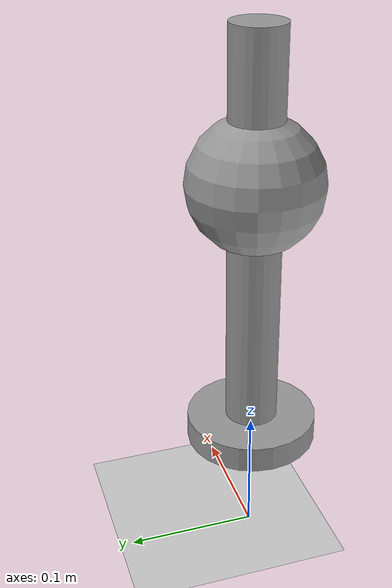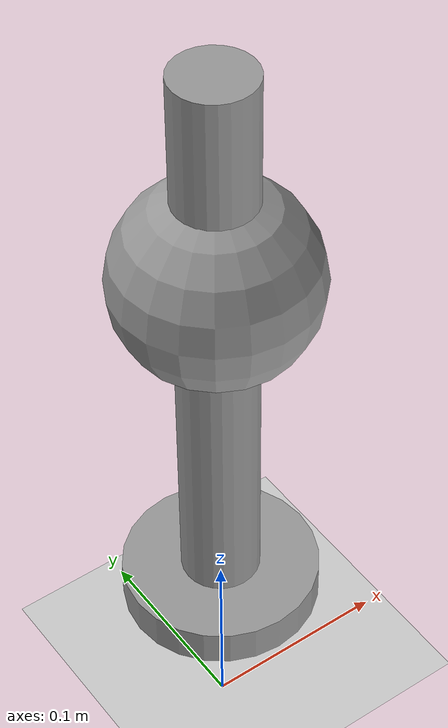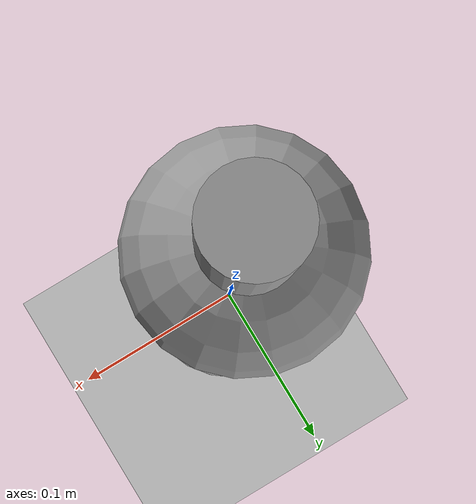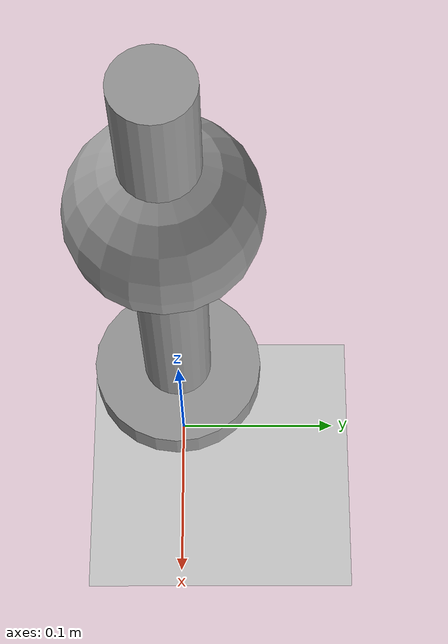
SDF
<sdf version="1.5">
 <world name="default">
  <light name="sun" type="directional">
   <pose>0 0 10 0 -0 0</pose>
   <diffuse>0.8 0.8 0.8 1</diffuse>
   <specular>0.2 0.2 0.2 1</specular>
   <attenuation>
    <range>1000</range>
    <constant>0.9</constant>
    <linear>0.01</linear>
    <quadratic>0.001</quadratic>
   </attenuation>
   <direction>-0.5 0.1 -0.9</direction>
  </light>
  <model name="ground_plane">
   <static>1</static>
   <link name="link">
    <collision name="collision">
     <geometry><plane><normal>0 0 1</normal><size>100 100</size></plane></geometry>
     <surface><friction><ode><mu>100</mu><mu2>50</mu2></ode></friction></surface>
    </collision>
    <visual name="visual">
     <cast_shadows>0</cast_shadows>
     <geometry><plane><normal>0 0 1</normal><size>100 100</size></plane></geometry>
     <material>
      <script><uri>file://media/materials/scripts/gazebo.material</uri><name>Gazebo/Grey</name></script>
     </material>
    </visual>
   </link>
  </model>
  <physics name="default_physics" default="0" type="ode">
   <max_step_size>0.001</max_step_size>
   <real_time_factor>1</real_time_factor>
   <real_time_update_rate>1000</real_time_update_rate>
   <gravity>0 0 -9.8</gravity>
   <magnetic_field>5.5645e-06 2.28758e-05 -4.23884e-05</magnetic_field>
  </physics>
  <scene><ambient>0.4 0.4 0.4 1</ambient><background>0.7 0.7 0.7 1</background><shadows>1</shadows></scene>
  <spherical_coordinates>
   <surface_model>EARTH_WGS84</surface_model>
   <latitude_deg>0</latitude_deg>
   <longitude_deg>0</longitude_deg>
   <elevation>0</elevation>
   <heading_deg>0</heading_deg>
  </spherical_coordinates>
  <model name="product">
   <link name="base_bottom">
    <pose>0 0 0.1 0 -0 0</pose>
    <inertial>
     <mass>0.0008</mass>
     <inertia><ixx>0.0008</ixx><ixy>0</ixy><ixz>0</ixz><iyy>0.0008</iyy><iyz>0</iyz><izz>0.0008</izz></inertia>
    </inertial>
    <collision name="collision">
     <geometry><cylinder><radius>0.05</radius><length>0.02</length></cylinder></geometry>
    </collision>
    <visual name="visual">
     <geometry><cylinder><radius>0.05</radius><length>0.02</length></cylinder></geometry>
     <material>
      <script><uri>file://media/materials/scripts/gazebo.material</uri><name>Gazebo/Grey</name></script>
     </material>
    </visual>
   </link>
   <link name="middle">
    <pose>0 0 0.13 0 0 0</pose>
    <inertial>
     <mass>0.0012</mass>
     <inertia><ixx>0.0012</ixx><ixy>0</ixy><ixz>0</ixz><iyy>0.0012</iyy><iyz>0</iyz><izz>0.0012</izz></inertia>
    </inertial>
    <collision name="collision">
     <pose>0 0 0.13 0 -0 0</pose>
     <geometry><cylinder><radius>0.02</radius><length>0.3</length></cylinder></geometry>
    </collision>
    <visual name="visual">
     <pose>0 0 0.13 0 -0 0</pose>
     <geometry><cylinder><radius>0.02</radius><length>0.3</length></cylinder></geometry>
     <material>
      <script><uri>file://media/materials/scripts/gazebo.material</uri><name>Gazebo/Grey</name></script>
     </material>
    </visual>
   </link>
   <link name="base_top">
    <pose>0 0 0.3 0 0 0</pose>
    <inertial>
     <mass>0.002</mass>
     <inertia><ixx>0.002</ixx><ixy>0</ixy><ixz>0</ixz><iyy>0.002</iyy><iyz>0</iyz><izz>0.002</izz></inertia>
    </inertial>
    <collision name="collision"><geometry><sphere><radius>0.05</radius></sphere></geometry></collision>
    <visual name="visual">
     <geometry><sphere><radius>0.05</radius></sphere></geometry>
     <material>
      <script><uri>file://media/materials/scripts/gazebo.material</uri><name>Gazebo/Grey</name></script>
     </material>
    </visual>
   </link>
   <joint name="top_middle" type="revolute">
    <child>base_top</child>
    <parent>middle</parent>
    <axis><xyz>0 0 1</xyz><limit><lower>-1e+16</lower><upper>1e+16</upper></limit></axis>
   </joint>
   <joint name="bottom_midle" type="revolute">
    <child>base_bottom</child>
    <parent>middle</parent>
    <axis><xyz>0 0 1</xyz><limit><lower>-1e+16</lower><upper>1e+16</upper></limit></axis>
   </joint>
  </model>
 </world>
</sdf>
